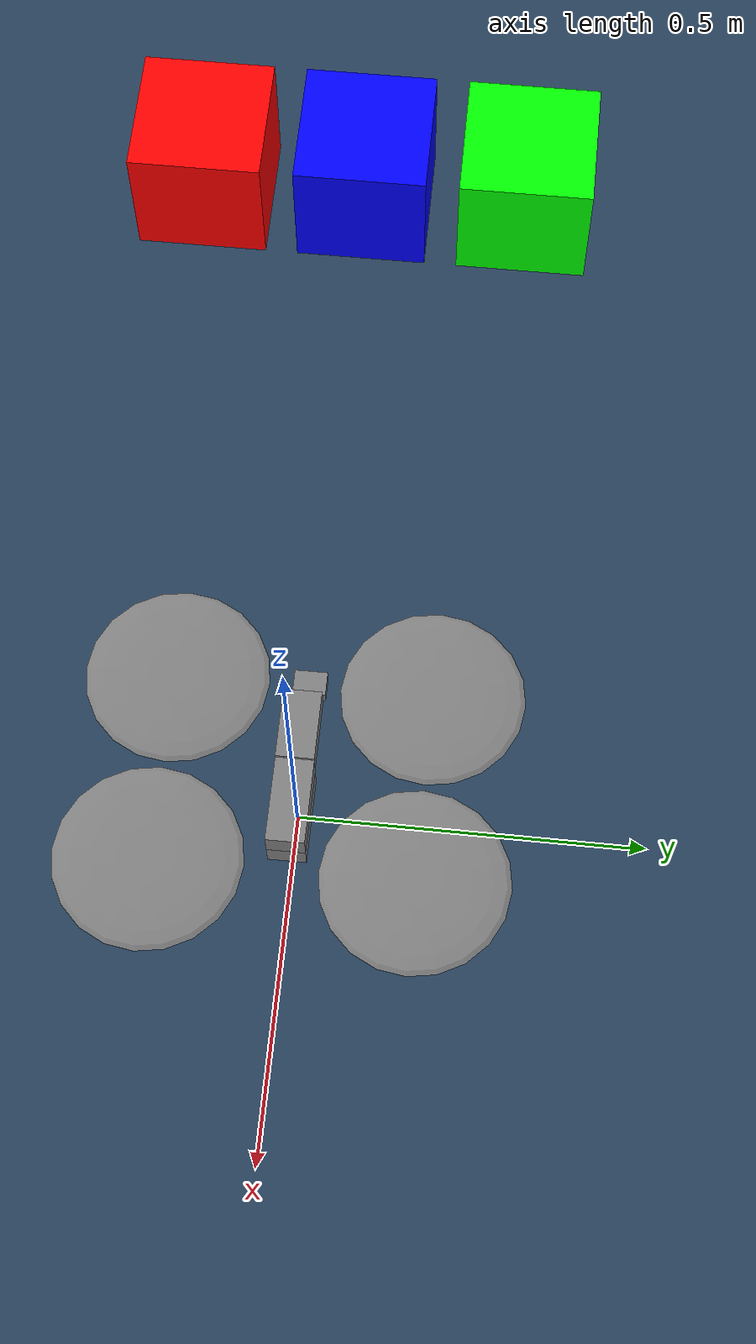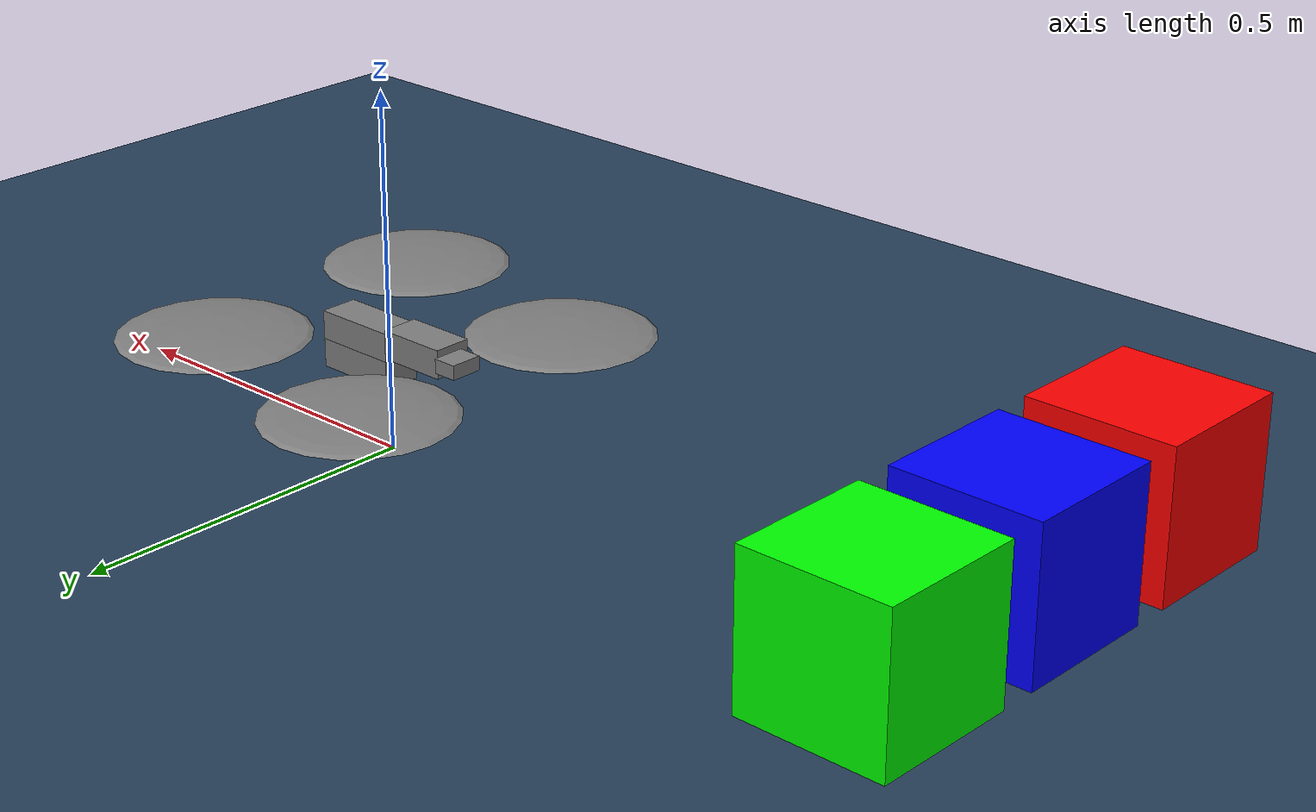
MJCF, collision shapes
<mujoco model="Skydio X2 scene">
  <include file="x2.xml"/>

  <statistic center="0 0 0.1" extent="0.6" meansize=".05"/>

  <visual>
    <headlight diffuse="0.6 0.6 0.6" ambient="0.3 0.3 0.3" specular="0 0 0"/>
    <rgba haze="0.15 0.25 0.35 1"/>
    <global azimuth="-20" elevation="-20" ellipsoidinertia="true"/>
  </visual>

  <asset>
    <texture type="skybox" builtin="gradient" rgb1="0.3 0.5 0.7" rgb2="0 0 0" width="512" height="3072"/>
    <texture type="2d" name="groundplane" builtin="checker" mark="edge" rgb1="0.2 0.3 0.4" rgb2="0.1 0.2 0.3"
      markrgb="0.8 0.8 0.8" width="300" height="300"/>
    <material name="groundplane" texture="groundplane" texuniform="true" texrepeat="5 5" reflectance="0.2"/>
  </asset>

  <worldbody>
    <light pos="0 0 1.5" dir="0 0 -1" directional="true"/>
    <geom name="floor" size="0 0 0.05" type="plane" material="groundplane"/>
    <geom name="box1" type="box" size="0.1 0.1 0.1" pos="-1 0 0.2" condim="1" rgba="0 0 1 1" quat="1 0 0 0"/>
    <geom name="box2" type="box" size="0.1 0.1 0.1" pos="-1 0.25 0.2" condim="1" rgba="0 1 0 1" quat="1 0 0 0"/>
    <geom name="box3" type="box" size="0.1 0.1 0.1" pos="-1 -0.25 0.2" rgba="1 0 0 1" condim="1" quat="1 0 0 0"/>
  </worldbody>
</mujoco>

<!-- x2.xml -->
<mujoco model="Skydio X2">
  <compiler autolimits="true" assetdir="assets"/>

  <option timestep="0.01" density="1.225" viscosity="1.8e-5"/>

  <default>
    <default class="x2">
      <geom mass="0"/>
      <motor ctrlrange="0 13"/>
      <mesh scale="0.01 0.01 0.01"/>
      <default class="visual">
        <geom group="2" type="mesh" contype="0" conaffinity="0"/>
      </default>
      <default class="collision">
        <geom group="3" type="box"/>
        <default class="rotor">
          <geom type="ellipsoid" size=".13 .13 .01"/>
        </default>
      </default>
      <site group="5"/>
    </default>
  </default>

  <asset>
    <texture type="2d" file="X2_lowpoly_texture_SpinningProps_1024.png"/>
    <material name="phong3SG" texture="X2_lowpoly_texture_SpinningProps_1024"/>
    <material name="invisible" rgba="0 0 0 0"/>
    <mesh class="x2" file="X2_lowpoly.obj"/>
  </asset>

  <worldbody>
    <light name="spotlight" mode="targetbodycom" target="x2" pos="0 -1 2"/>
    <body name="x2" pos="0 0 0.1" childclass="x2">
      <freejoint/>
      <site name="imu" pos="0 0 .02"/>

      <camera name="eye" pos="-0.15 0 0.1" quat="0.5 0.5 0.5 0.5" mode="fixed"/>

      <geom material="phong3SG" mesh="X2_lowpoly" class="visual" quat="0 0 1 1"/>
      <geom class="collision" size=".06 .027 .02" pos=".04 0 .02"/>
      <geom class="collision" size=".06 .027 .02" pos=".04 0 .06"/>
      <geom class="collision" size=".05 .027 .02" pos="-.07 0 .065"/>
      <geom class="collision" size=".023 .017 .01" pos="-.137 .008 .065" quat="1 0 0 1"/>
      <geom name="rotor1" class="rotor" pos="-.14 -.18 .05" mass=".25"/>
      <geom name="rotor2" class="rotor" pos="-.14 .18 .05" mass=".25"/>
      <geom name="rotor3" class="rotor" pos=".14 .18 .08" mass=".25"/>
      <geom name="rotor4" class="rotor" pos=".14 -.18 .08" mass=".25"/>
      <geom size=".16 .04 .02" pos="0 0 0.02" type="ellipsoid" mass=".325" class="visual" material="invisible"/>
      <site name="thrust1" pos="-.14 -.18 .05"/>
      <site name="thrust2" pos="-.14 .18 .05"/>
      <site name="thrust3" pos=".14 .18 .08"/>
      <site name="thrust4" pos=".14 -.18 .08"/>
    </body>
  </worldbody>

  <actuator>
    <motor class="x2" name="thrust1" site="thrust1" gear="0 0 1 0 0 -.0201"/>
    <motor class="x2" name="thrust2" site="thrust2" gear="0 0 1 0 0  .0201"/>
    <motor class="x2" name="thrust3" site="thrust3" gear="0 0 1 0 0  .0201"/>
    <motor class="x2" name="thrust4" site="thrust4" gear="0 0 1 0 0 -.0201"/>
  </actuator>

  <keyframe>
    <key name="hover" qpos="0 0 .3 1 0 0 0" ctrl="3.2495625 3.2495625 3.2495625 3.2495625"/>
  </keyframe>

  <sensor>
    <gyro name="body_gyro" site="imu"/>
    <accelerometer name="body_linacc" site="imu"/>
    <framequat name="body_quat" objtype="site" objname="imu"/>
  </sensor>
</mujoco>
